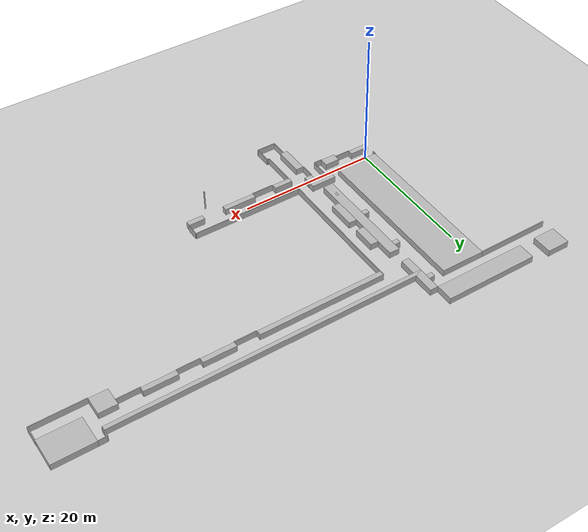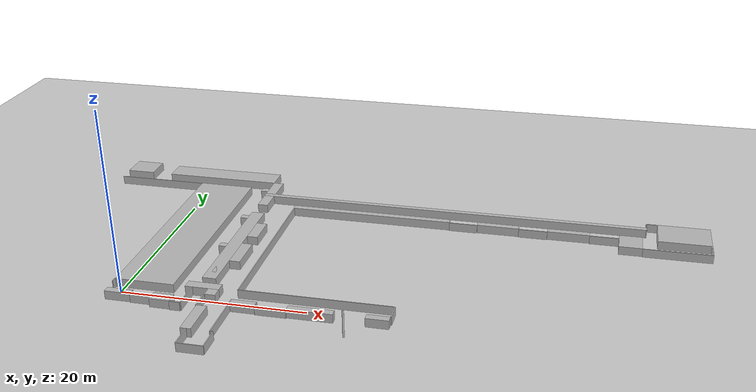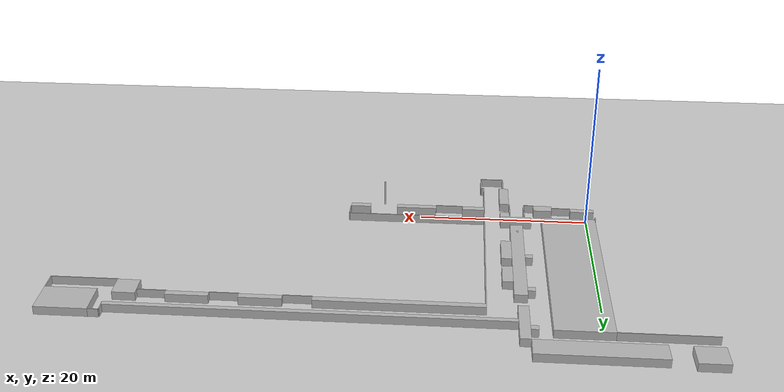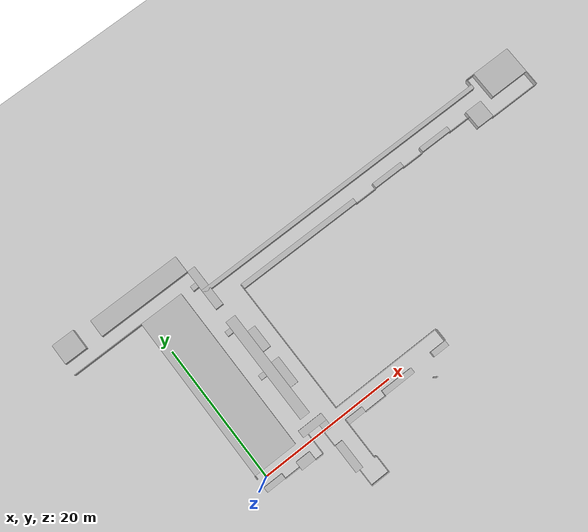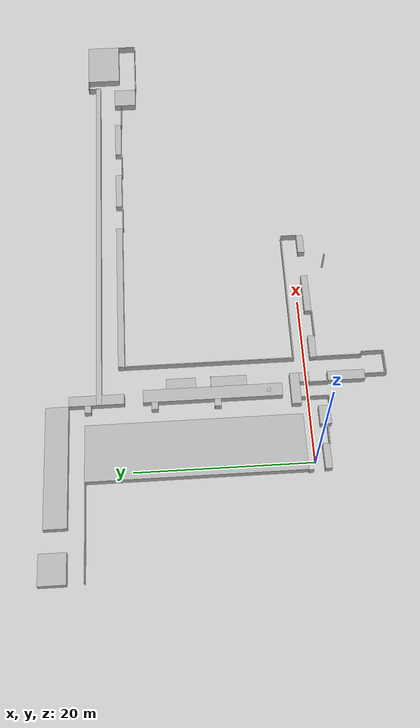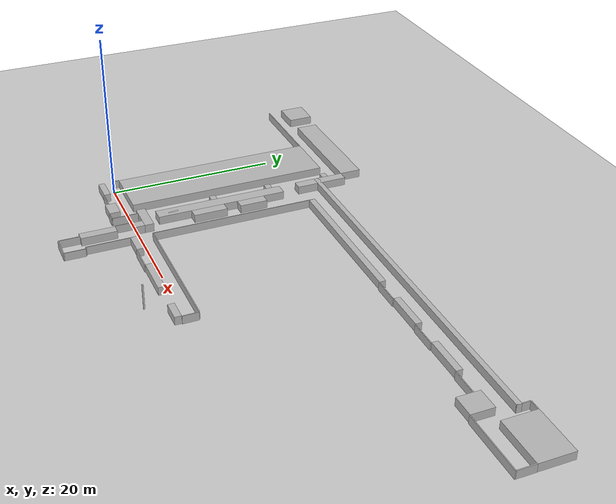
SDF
<sdf version="1.6">
 <world name="default">
  <light name="sun" type="directional">
   <pose>0 0 10 0 -0 0</pose>
   <diffuse>0.8 0.8 0.8 1</diffuse>
   <specular>0.2 0.2 0.2 1</specular>
   <attenuation>
    <range>1000</range>
    <constant>0.9</constant>
    <linear>0.01</linear>
    <quadratic>0.001</quadratic>
   </attenuation>
   <direction>-0.5 0.1 -0.9</direction>
  </light>
  <model name="ground_plane">
   <static>1</static>
   <link name="link">
    <collision name="collision">
     <geometry><plane><normal>0 0 1</normal><size>100 100</size></plane></geometry>
     <surface><friction><ode><mu>100</mu><mu2>50</mu2></ode></friction></surface>
    </collision>
    <visual name="visual">
     <cast_shadows>0</cast_shadows>
     <geometry><plane><normal>0 0 1</normal><size>100 100</size></plane></geometry>
     <material>
      <script><uri>file://media/materials/scripts/gazebo.material</uri><name>Gazebo/Grey</name></script>
     </material>
    </visual>
   </link>
  </model>
  <model name="FMT">
   <pose>0 0 0 0 0 -1.5708</pose>
   <static>1</static>
   <link name="wall1">
    <pose>1.29 0.42 0.5 0 -0 0</pose>
    <collision name="collision"><geometry><box><size>0.77 2.83 1</size></box></geometry></collision>
    <visual name="visual"><geometry><box><size>0.77 2.83 1</size></box></geometry></visual>
   </link>
   <link name="wall2">
    <pose>-0.62 -1.05 0.5 0 -0 0</pose>
    <collision name="collision"><geometry><box><size>0.56 0.1 1</size></box></geometry></collision>
    <visual name="visual"><geometry><box><size>0.56 0.1 1</size></box></geometry></visual>
   </link>
   <link name="wall3">
    <pose>1.72 2.96 0.5 0 -0 0</pose>
    <collision name="collision"><geometry><box><size>0.1 2.27 1</size></box></geometry></collision>
    <visual name="visual"><geometry><box><size>0.1 2.27 1</size></box></geometry></visual>
   </link>
   <link name="wall4">
    <pose>1.54 5.2 0.5 0 -0 0</pose>
    <collision name="collision"><geometry><box><size>1.28 2.19 1</size></box></geometry></collision>
    <visual name="visual"><geometry><box><size>1.28 2.19 1</size></box></geometry></visual>
   </link>
   <link name="wall5">
    <pose>2.23 6.86 0.5 0 -0 0</pose>
    <collision name="collision"><geometry><box><size>0.1 1.14 1</size></box></geometry></collision>
    <visual name="visual"><geometry><box><size>0.1 1.14 1</size></box></geometry></visual>
   </link>
   <link name="wall6">
    <pose>0.64 7.48 0.5 0 -0 0</pose>
    <collision name="collision"><geometry><box><size>3.08 0.1 1</size></box></geometry></collision>
    <visual name="visual"><geometry><box><size>3.08 0.1 1</size></box></geometry></visual>
   </link>
   <link name="wall7">
    <pose>-13.06 2.23 0.5 0 -0 0</pose>
    <collision name="collision"><geometry><box><size>24.32 6.45 1</size></box></geometry></collision>
    <visual name="visual"><geometry><box><size>24.32 6.45 1</size></box></geometry></visual>
   </link>
   <link name="wall8">
    <pose>-1.44 8.56 0.5 0 -0 0</pose>
    <collision name="collision"><geometry><box><size>1.08 3.7 1</size></box></geometry></collision>
    <visual name="visual"><geometry><box><size>1.08 3.7 1</size></box></geometry></visual>
   </link>
   <link name="wall9">
    <pose>-10.81 8.55 0.5 0 -0 0</pose>
    <collision name="collision"><geometry><box><size>15.75 1.5 1</size></box></geometry></collision>
    <visual name="visual"><geometry><box><size>15.75 1.5 1</size></box></geometry></visual>
   </link>
   <link name="wall10">
    <pose>-4.86 8.58 0.5 0 -0 0</pose>
    <collision name="collision"><geometry><box><size>1.17 0.45 1</size></box></geometry></collision>
    <visual name="visual"><geometry><box><size>1.17 0.45 1</size></box></geometry></visual>
   </link>
   <link name="wall11">
    <pose>-10.29 7.37 0.5 0 -0 0</pose>
    <collision name="collision"><geometry><box><size>0.75 0.87 1</size></box></geometry></collision>
    <visual name="visual"><geometry><box><size>0.75 0.87 1</size></box></geometry></visual>
   </link>
   <link name="wall12">
    <pose>-17.38 7.37 0.5 0 -0 0</pose>
    <collision name="collision"><geometry><box><size>0.75 0.87 1</size></box></geometry></collision>
    <visual name="visual"><geometry><box><size>0.75 0.87 1</size></box></geometry></visual>
   </link>
   <link name="wall13">
    <pose>-24.86 7.37 0.5 0 -0 0</pose>
    <collision name="collision"><geometry><box><size>0.75 0.87 1</size></box></geometry></collision>
    <visual name="visual"><geometry><box><size>0.75 0.87 1</size></box></geometry></visual>
   </link>
   <link name="wall14">
    <pose>-23.91 8.39 0.5 0 -0 0</pose>
    <collision name="collision"><geometry><box><size>6.24 1.18 1</size></box></geometry></collision>
    <visual name="visual"><geometry><box><size>6.24 1.18 1</size></box></geometry></visual>
   </link>
   <link name="wall15">
    <pose>-28.31 0.94 0.5 0 -0 0</pose>
    <collision name="collision"><geometry><box><size>2.58 13.73 1</size></box></geometry></collision>
    <visual name="visual"><geometry><box><size>2.58 13.73 1</size></box></geometry></visual>
   </link>
   <link name="wall16">
    <pose>-25.17 -6.31 0.5 0 -0 0</pose>
    <collision name="collision"><geometry><box><size>0.1 10.62 1</size></box></geometry></collision>
    <visual name="visual"><geometry><box><size>0.1 10.62 1</size></box></geometry></visual>
   </link>
   <link name="wall17">
    <pose>-28.52 -10.07 0.5 0 -0 0</pose>
    <collision name="collision"><geometry><box><size>3 3.33 1</size></box></geometry></collision>
    <visual name="visual"><geometry><box><size>3 3.33 1</size></box></geometry></visual>
   </link>
   <link name="wall18">
    <pose>-8.94 9.9 0.5 0 -0 0</pose>
    <collision name="collision"><geometry><box><size>4.07 1.2 1</size></box></geometry></collision>
    <visual name="visual"><geometry><box><size>4.07 1.2 1</size></box></geometry></visual>
   </link>
   <link name="wall19">
    <pose>-14.35 9.9 0.5 0 -0 0</pose>
    <collision name="collision"><geometry><box><size>3.36 1.2 1</size></box></geometry></collision>
    <visual name="visual"><geometry><box><size>3.36 1.2 1</size></box></geometry></visual>
   </link>
   <link name="wall20">
    <pose>-0.34 9.85 0.5 0 -0 0</pose>
    <collision name="collision"><geometry><box><size>1.12 1.13 1</size></box></geometry></collision>
    <visual name="visual"><geometry><box><size>1.12 1.13 1</size></box></geometry></visual>
   </link>
   <link name="wall21">
    <pose>1.29 9.23 0.5 0 -0 0</pose>
    <collision name="collision"><geometry><box><size>2.13 0.1 1</size></box></geometry></collision>
    <visual name="visual"><geometry><box><size>2.13 0.1 1</size></box></geometry></visual>
   </link>
   <link name="wall22">
    <pose>4.47 9.85 0.5 0 -0 0</pose>
    <collision name="collision"><geometry><box><size>4.24 1.13 1</size></box></geometry></collision>
    <visual name="visual"><geometry><box><size>4.24 1.13 1</size></box></geometry></visual>
   </link>
   <link name="wall23">
    <pose>3.59 12.34 0.5 0 -0 0</pose>
    <collision name="collision"><geometry><box><size>6 0.1 1</size></box></geometry></collision>
    <visual name="visual"><geometry><box><size>6 0.1 1</size></box></geometry></visual>
   </link>
   <link name="wall24">
    <pose>0.98 13.65 0.5 0 -0 0</pose>
    <collision name="collision"><geometry><box><size>0.78 2.72 1</size></box></geometry></collision>
    <visual name="visual"><geometry><box><size>0.78 2.72 1</size></box></geometry></visual>
   </link>
   <link name="wall25">
    <pose>1.42 16.64 0.5 0 -0 0</pose>
    <collision name="collision"><geometry><box><size>0.1 3.26 1</size></box></geometry></collision>
    <visual name="visual"><geometry><box><size>0.1 3.26 1</size></box></geometry></visual>
   </link>
   <link name="wall26">
    <pose>0.98 20.66 0.5 0 -0 0</pose>
    <collision name="collision"><geometry><box><size>0.78 4.79 1</size></box></geometry></collision>
    <visual name="visual"><geometry><box><size>0.78 4.79 1</size></box></geometry></visual>
   </link>
   <link name="wall28">
    <pose>0.98 27.52 0.5 0 -0 0</pose>
    <collision name="collision"><geometry><box><size>0.78 2.41 1</size></box></geometry></collision>
    <visual name="visual"><geometry><box><size>0.78 2.41 1</size></box></geometry></visual>
   </link>
   <link name="wall29">
    <pose>-0.33 28.78 0.5 0 -0 0</pose>
    <collision name="collision"><geometry><box><size>1.84 0.1 1</size></box></geometry></collision>
    <visual name="visual"><geometry><box><size>1.84 0.1 1</size></box></geometry></visual>
   </link>
   <link name="wall30">
    <pose>-1.3 20.51 0.5 0 -0 0</pose>
    <collision name="collision"><geometry><box><size>0.1 16.44 1</size></box></geometry></collision>
    <visual name="visual"><geometry><box><size>0.1 16.44 1</size></box></geometry></visual>
   </link>
   <link name="wall31">
    <pose>-11.35 12.34 0.5 0 -0 0</pose>
    <collision name="collision"><geometry><box><size>20 0.1 1</size></box></geometry></collision>
    <visual name="visual"><geometry><box><size>20 0.1 1</size></box></geometry></visual>
   </link>
   <link name="wall32">
    <pose>-23.64 30.61 0.5 0 -0 0</pose>
    <collision name="collision"><geometry><box><size>0.6 45.61 1</size></box></geometry></collision>
    <visual name="visual"><geometry><box><size>0.6 45.61 1</size></box></geometry></visual>
   </link>
   <link name="wall33">
    <pose>-21.07 21.66 0.5 0 -0 0</pose>
    <collision name="collision"><geometry><box><size>0.75 18.75 1</size></box></geometry></collision>
    <visual name="visual"><geometry><box><size>0.75 18.75 1</size></box></geometry></visual>
   </link>
   <link name="wall34">
    <pose>-20.64 32.66 0.5 0 -0 0</pose>
    <collision name="collision"><geometry><box><size>0.1 3.25 1</size></box></geometry></collision>
    <visual name="visual"><geometry><box><size>0.1 3.25 1</size></box></geometry></visual>
   </link>
   <link name="wall35">
    <pose>-21.07 36.67 0.5 0 -0 0</pose>
    <collision name="collision"><geometry><box><size>0.75 4.77 1</size></box></geometry></collision>
    <visual name="visual"><geometry><box><size>0.75 4.77 1</size></box></geometry></visual>
   </link>
   <link name="wall36">
    <pose>-20.64 40.69 0.5 0 -0 0</pose>
    <collision name="collision"><geometry><box><size>0.1 3.25 1</size></box></geometry></collision>
    <visual name="visual"><geometry><box><size>0.1 3.25 1</size></box></geometry></visual>
   </link>
   <link name="wall37">
    <pose>-21.07 44.7 0.5 0 -0 0</pose>
    <collision name="collision"><geometry><box><size>0.75 4.77 1</size></box></geometry></collision>
    <visual name="visual"><geometry><box><size>0.75 4.77 1</size></box></geometry></visual>
   </link>
   <link name="wall38">
    <pose>-20.64 48.7 0.5 0 -0 0</pose>
    <collision name="collision"><geometry><box><size>0.1 3.25 1</size></box></geometry></collision>
    <visual name="visual"><geometry><box><size>0.1 3.25 1</size></box></geometry></visual>
   </link>
   <link name="wall39">
    <pose>-20.09 51.63 0.5 0 -0 0</pose>
    <collision name="collision"><geometry><box><size>2.7 2.6 1</size></box></geometry></collision>
    <visual name="visual"><geometry><box><size>2.7 2.6 1</size></box></geometry></visual>
   </link>
   <link name="wall40">
    <pose>-24.09 53.36 0.5 0 -0 0</pose>
    <collision name="collision"><geometry><box><size>1.5 0.1 1</size></box></geometry></collision>
    <visual name="visual"><geometry><box><size>1.5 0.1 1</size></box></geometry></visual>
   </link>
   <link name="wall41">
    <pose>-24.89 54.01 0.5 0 -0 0</pose>
    <collision name="collision"><geometry><box><size>0.1 1.2 1</size></box></geometry></collision>
    <visual name="visual"><geometry><box><size>0.1 1.2 1</size></box></geometry></visual>
   </link>
   <link name="wall42">
    <pose>-22.89 57.56 0.5 0 -0 0</pose>
    <collision name="collision"><geometry><box><size>4.1 5.9 1</size></box></geometry></collision>
    <visual name="visual"><geometry><box><size>4.1 5.9 1</size></box></geometry></visual>
   </link>
   <link name="wall43">
    <pose>-18.69 56.73 0.5 0 -0 0</pose>
    <collision name="collision"><geometry><box><size>0.1 7.6 1</size></box></geometry></collision>
    <visual name="visual"><geometry><box><size>0.1 7.6 1</size></box></geometry></visual>
   </link>
   <link name="wall44">
    <pose>-19.77 60.48 0.5 0 -0 0</pose>
    <collision name="collision"><geometry><box><size>2.25 0.1 1</size></box></geometry></collision>
    <visual name="visual"><geometry><box><size>2.25 0.1 1</size></box></geometry></visual>
   </link>
   <link name="wall45">
    <pose>7.82 9.91 0.5 0 -0 0</pose>
    <collision name="collision"><geometry><box><size>2.45 0.1 1</size></box></geometry></collision>
    <visual name="visual"><geometry><box><size>2.45 0.1 1</size></box></geometry></visual>
   </link>
   <link name="wall46">
    <pose>6.54 12.46 0.5 0 -0 0</pose>
    <collision name="collision"><geometry><box><size>0.1 0.33 1</size></box></geometry></collision>
    <visual name="visual"><geometry><box><size>0.1 0.33 1</size></box></geometry></visual>
   </link>
   <link name="wall47">
    <pose>7.82 12.67 0.5 0 -0 0</pose>
    <collision name="collision"><geometry><box><size>2.45 0.1 1</size></box></geometry></collision>
    <visual name="visual"><geometry><box><size>2.45 0.1 1</size></box></geometry></visual>
   </link>
   <link name="wall48">
    <pose>9.09 11.3 0.5 0 -0 0</pose>
    <collision name="collision"><geometry><box><size>0.1 2.83 1</size></box></geometry></collision>
    <visual name="visual"><geometry><box><size>0.1 2.83 1</size></box></geometry></visual>
   </link>
   <link name="goal">
    <pose>3.42 24.69 0.5 0 -0 0</pose>
    <collision name="collision">
     <geometry><cylinder><radius>0.1</radius><length>5</length></cylinder></geometry>
    </collision>
    <visual name="visual">
     <geometry><cylinder><radius>0.1</radius><length>5</length></cylinder></geometry>
    </visual>
   </link>
   <link name="start">
    <pose>0 0 0.025 0 -0 0</pose>
    <visual name="visual">
     <geometry><cylinder><radius>0.05</radius><length>0.05</length></cylinder></geometry>
    </visual>
   </link>
  </model>
  <physics name="default_physics" default="0" type="ode">
   <max_step_size>0.01</max_step_size>
   <real_time_factor>1</real_time_factor>
   <real_time_update_rate>100</real_time_update_rate>
  </physics>
  <gravity>0 0 -9.8</gravity>
  <magnetic_field>6e-06 2.3e-05 -4.2e-05</magnetic_field>
  <atmosphere type="adiabatic"/>
  <scene><ambient>0.4 0.4 0.4 1</ambient><background>0.7 0.7 0.7 1</background><shadows>1</shadows></scene>
  <spherical_coordinates>
   <surface_model>EARTH_WGS84</surface_model>
   <latitude_deg>0</latitude_deg>
   <longitude_deg>0</longitude_deg>
   <elevation>0</elevation>
   <heading_deg>0</heading_deg>
  </spherical_coordinates>
 </world>
</sdf>
